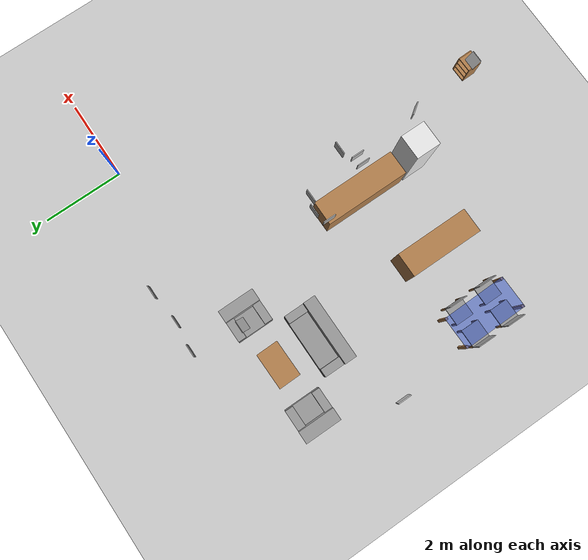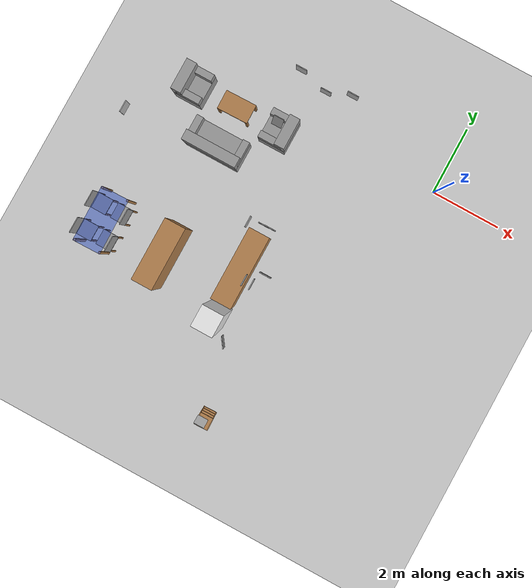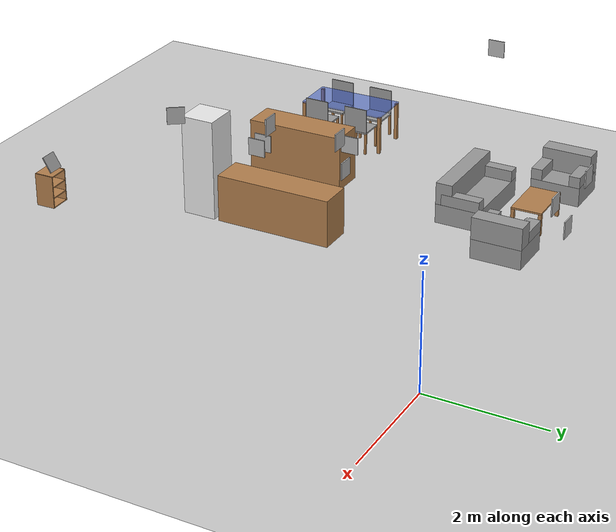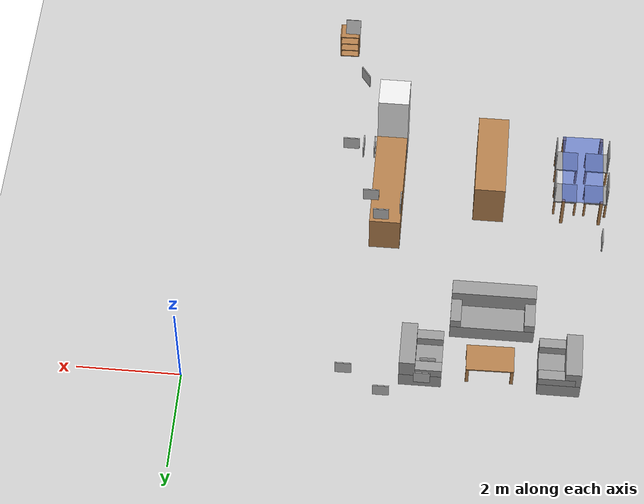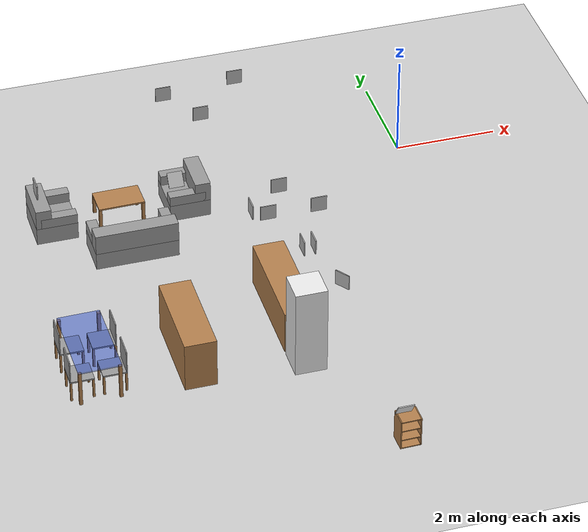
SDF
<sdf version="1.6">
 <world name="GrannyAnnie">
  <model name="ground_plane">
   <static>1</static>
   <link name="link">
    <collision name="collision">
     <geometry><plane><normal>0 0 1</normal><size>100 100</size></plane></geometry>
     <surface><friction><ode><mu>100</mu><mu2>50</mu2></ode></friction></surface>
    </collision>
    <visual name="visual">
     <cast_shadows>0</cast_shadows>
     <geometry><plane><normal>0 0 1</normal><size>100 100</size></plane></geometry>
     <material>
      <script><uri>file://media/materials/scripts/gazebo.material</uri><name>Gazebo/Grey</name></script>
     </material>
    </visual>
    <velocity_decay><linear>0</linear><angular>0</angular></velocity_decay>
   </link>
  </model>
  <model name="tag_0">
   <pose>-3.817 0.7 1.12 -1.57079 -1.57079 3.14159</pose>
   <static>1</static>
   <link name="link">
    <collision name="collision"><geometry><box><size>0.3 0.3 0.02</size></box></geometry></collision>
    <visual name="visual">
     <geometry><box><size>0.3 0.3 0.02</size></box></geometry>
     <material>
      <script><uri>file://tags_material/scripts/tags.material</uri><name>Tag36_11_00000</name></script>
     </material>
    </visual>
   </link>
   <static>0</static>
  </model>
  <model name="tag_1">
   <pose>-2.583 -8.289 0.74 0 -1.03 -1.5708</pose>
   <static>1</static>
   <link name="link">
    <collision name="collision"><geometry><box><size>0.3 0.3 0.02</size></box></geometry></collision>
    <visual name="visual">
     <geometry><box><size>0.3 0.3 0.02</size></box></geometry>
     <material>
      <script><uri>file://tags_material/scripts/tags.material</uri><name>Tag36_11_00001</name></script>
     </material>
    </visual>
   </link>
   <static>0</static>
  </model>
  <model name="tag_2">
   <pose>-3.304 -4.474 1.65 3.14159 -1.57079 3.14159</pose>
   <static>1</static>
   <link name="link">
    <collision name="collision"><geometry><box><size>0.3 0.3 0.02</size></box></geometry></collision>
    <visual name="visual">
     <geometry><box><size>0.3 0.3 0.02</size></box></geometry>
     <material>
      <script><uri>file://tags_material/scripts/tags.material</uri><name>Tag36_11_00002</name></script>
     </material>
    </visual>
   </link>
   <static>0</static>
  </model>
  <model name="tag_4">
   <pose>-4.549 0.727 1.7 -1.57079 -1.57079 3.14159</pose>
   <static>1</static>
   <link name="link">
    <collision name="collision"><geometry><box><size>0.3 0.3 0.02</size></box></geometry></collision>
    <visual name="visual">
     <geometry><box><size>0.3 0.3 0.02</size></box></geometry>
     <material>
      <script><uri>file://tags_material/scripts/tags.material</uri><name>Tag36_11_00004</name></script>
     </material>
    </visual>
   </link>
   <static>0</static>
  </model>
  <model name="tag_6">
   <pose>-3.535 -3.0625 1.4 1.57079 -1.57079 3.14159</pose>
   <static>1</static>
   <link name="link">
    <collision name="collision"><geometry><box><size>0.3 0.3 0.02</size></box></geometry></collision>
    <visual name="visual">
     <geometry><box><size>0.3 0.3 0.02</size></box></geometry>
     <material>
      <script><uri>file://tags_material/scripts/tags.material</uri><name>Tag36_11_00006</name></script>
     </material>
    </visual>
   </link>
   <static>0</static>
  </model>
  <model name="tag_11">
   <pose>-3.338 -3.071 1.99 1.57079 -1.57079 3.14159</pose>
   <static>1</static>
   <link name="link">
    <collision name="collision"><geometry><box><size>0.3 0.3 0.02</size></box></geometry></collision>
    <visual name="visual">
     <geometry><box><size>0.3 0.3 0.02</size></box></geometry>
     <material>
      <script><uri>file://tags_material/scripts/tags.material</uri><name>Tag36_11_00011</name></script>
     </material>
    </visual>
   </link>
   <static>0</static>
  </model>
  <model name="tag_12">
   <pose>-3.128 0.72 1.83 -1.57079 -1.57079 3.14159</pose>
   <static>1</static>
   <link name="link">
    <collision name="collision"><geometry><box><size>0.3 0.3 0.02</size></box></geometry></collision>
    <visual name="visual">
     <geometry><box><size>0.3 0.3 0.02</size></box></geometry>
     <material>
      <script><uri>file://tags_material/scripts/tags.material</uri><name>Tag36_11_00012</name></script>
     </material>
    </visual>
   </link>
   <static>0</static>
  </model>
  <model name="tag_14">
   <pose>-2.884 -4.091 2.215 1.57079 -1.57079 3.14159</pose>
   <static>1</static>
   <link name="link">
    <collision name="collision"><geometry><box><size>0.3 0.02 0.3</size></box></geometry></collision>
    <visual name="visual">
     <geometry><box><size>0.3 0.3 0.02</size></box></geometry>
     <material>
      <script><uri>file://tags_material/scripts/tags.material</uri><name>Tag36_11_00014</name></script>
     </material>
    </visual>
   </link>
   <static>0</static>
  </model>
  <model name="tag_15">
   <pose>-7.694 -2.223 2.208 7e-06 -1.57079 -3.14159</pose>
   <static>1</static>
   <link name="link">
    <collision name="collision"><geometry><box><size>0.02 0.3 0.3</size></box></geometry></collision>
    <visual name="visual">
     <geometry><box><size>0.3 0.3 0.02</size></box></geometry>
     <material>
      <script><uri>file://tags_material/scripts/tags.material</uri><name>Tag36_11_00015</name></script>
     </material>
    </visual>
   </link>
   <static>0</static>
  </model>
  <model name="tag_16">
   <pose>-3.094 -4.474 1.65 7e-06 -1.57079 -3.14159</pose>
   <static>1</static>
   <link name="link">
    <collision name="collision"><geometry><box><size>0.3 0.3 0.02</size></box></geometry></collision>
    <visual name="visual">
     <geometry><box><size>0.3 0.3 0.02</size></box></geometry>
     <material>
      <script><uri>file://tags_material/scripts/tags.material</uri><name>Tag36_11_00016</name></script>
     </material>
    </visual>
   </link>
   <static>0</static>
  </model>
  <model name="tag_17">
   <pose>-3.902 -3.178 1.65 3.14159 -1.57079 3.14159</pose>
   <static>1</static>
   <link name="link">
    <collision name="collision"><geometry><box><size>0.3 0.3 0.02</size></box></geometry></collision>
    <visual name="visual">
     <geometry><box><size>0.3 0.3 0.02</size></box></geometry>
     <material>
      <script><uri>file://tags_material/scripts/tags.material</uri><name>Tag36_11_00017</name></script>
     </material>
    </visual>
   </link>
   <static>0</static>
  </model>
  <model name="tag_19">
   <pose>-3.01927 -5.98086 1.935 -2.51948 -1.57079 -3.13788</pose>
   <static>1</static>
   <link name="link">
    <collision name="collision"><geometry><box><size>0.3 0.3 0.02</size></box></geometry></collision>
    <visual name="visual">
     <geometry><box><size>0.3 0.3 0.02</size></box></geometry>
     <material>
      <script><uri>file://tags_material/scripts/tags.material</uri><name>Tag36_11_00019</name></script>
     </material>
    </visual>
   </link>
   <static>0</static>
  </model>
  <model name="tag_28">
   <pose>-4.62832 -0.431263 0.491895 0.888007 0.004104 0</pose>
   <static>1</static>
   <link name="link">
    <collision name="collision"><geometry><box><size>0.3 0.3 0.02</size></box></geometry></collision>
    <visual name="visual">
     <geometry><box><size>0.3 0.3 0.02</size></box></geometry>
     <material>
      <script><uri>file://tags_material/scripts/tags.material</uri><name>Tag36_11_00028</name></script>
     </material>
    </visual>
   </link>
   <static>0</static>
  </model>
  <model name="mesa_comedor">
   <link name="mesa_link">
    <inertial>
     <pose>0 0 0.513571 0 -0 0</pose>
     <mass>7</mass>
     <inertia>
      <ixx>1.28229</ixx>
      <ixy>0</ixy>
      <ixz>5.70179e-17</ixz>
      <iyy>3.10629</iyy>
      <iyz>0</iyz>
      <izz>3.4192</izz>
     </inertia>
    </inertial>
    <collision name="mesa_link_collision">
     <pose>0 0 0.725 0 -0 0</pose>
     <geometry><box><size>1.6 0.8 0.03</size></box></geometry>
     <surface><friction><ode><mu>1</mu><mu2>1</mu2></ode></friction></surface>
    </collision>
    <collision name="mesa_link_collision_pata_1_link">
     <pose>0.77 0.37 0.355 0 -0 0</pose>
     <geometry><box><size>0.06 0.06 0.71</size></box></geometry>
     <surface><friction><ode><mu>1</mu><mu2>1</mu2></ode></friction></surface>
     <surface><friction><ode><mu>1</mu><mu2>1</mu2></ode></friction></surface>
    </collision>
    <collision name="mesa_link_collision_pata_2_link">
     <pose>0.77 -0.37 0.355 0 -0 0</pose>
     <geometry><box><size>0.06 0.06 0.71</size></box></geometry>
     <surface><friction><ode><mu>1</mu><mu2>1</mu2></ode></friction></surface>
     <surface><friction><ode><mu>1</mu><mu2>1</mu2></ode></friction></surface>
    </collision>
    <collision name="mesa_link_collision_pata_3_link">
     <pose>-0.77 -0.37 0.355 0 -0 0</pose>
     <geometry><box><size>0.06 0.06 0.71</size></box></geometry>
     <surface><friction><ode><mu>1</mu><mu2>1</mu2></ode></friction></surface>
     <surface><friction><ode><mu>1</mu><mu2>1</mu2></ode></friction></surface>
    </collision>
    <collision name="mesa_link_collision_pata_4_link">
     <pose>-0.77 0.37 0.355 0 -0 0</pose>
     <geometry><box><size>0.06 0.06 0.71</size></box></geometry>
     <surface><friction><ode><mu>1</mu><mu2>1</mu2></ode></friction></surface>
     <surface><friction><ode><mu>1</mu><mu2>1</mu2></ode></friction></surface>
    </collision>
    <visual name="mesa_link_visual">
     <pose>0 0 0.725 0 -0 0</pose>
     <geometry><box><size>1.6 0.8 0.03</size></box></geometry>
     <material><script><name>Gazebo/BlueTransparent</name><uri>__default__</uri></script></material>
    </visual>
    <visual name="mesa_link_visual_pata_1_link">
     <pose>0.77 0.37 0.355 0 -0 0</pose>
     <geometry><box><size>0.06 0.06 0.71</size></box></geometry>
     <material><script><name>Gazebo/Wood</name><uri>__default__</uri></script></material>
    </visual>
    <visual name="mesa_link_visual_pata_2_link">
     <pose>0.77 -0.37 0.355 0 -0 0</pose>
     <geometry><box><size>0.06 0.06 0.71</size></box></geometry>
     <material><script><name>Gazebo/Wood</name><uri>__default__</uri></script></material>
    </visual>
    <visual name="mesa_link_visual_pata_3_link">
     <pose>-0.77 -0.37 0.355 0 -0 0</pose>
     <geometry><box><size>0.06 0.06 0.71</size></box></geometry>
     <material><script><name>Gazebo/Wood</name><uri>__default__</uri></script></material>
    </visual>
    <visual name="mesa_link_visual_pata_4_link">
     <pose>-0.77 0.37 0.355 0 -0 0</pose>
     <geometry><box><size>0.06 0.06 0.71</size></box></geometry>
     <material><script><name>Gazebo/Wood</name><uri>__default__</uri></script></material>
    </visual>
    <velocity_decay><linear>0</linear><angular>0</angular></velocity_decay>
    <velocity_decay><linear>0</linear><angular>0</angular></velocity_decay>
    <velocity_decay><linear>0</linear><angular>0</angular></velocity_decay>
    <velocity_decay><linear>0</linear><angular>0</angular></velocity_decay>
    <velocity_decay><linear>0</linear><angular>0</angular></velocity_decay>
    <self_collide>1</self_collide>
   </link>
   <pose>-7.41088 -4.97194 -0.00088 0 -0 1.58516</pose>
   <static>0</static>
  </model>
  <model name="silla_1">
   <link name="silla_link">
    <inertial>
     <pose>0.0215 0 0.353 0 -0 0</pose>
     <mass>2</mass>
     <inertia>
      <ixx>0.674432</ixx>
      <ixy>0</ixy>
      <ixz>-0.012986</ixz>
      <iyy>0.682753</iyy>
      <iyz>0</iyz>
      <izz>0.675561</izz>
     </inertia>
    </inertial>
    <collision name="silla_link_collision">
     <pose>0 0 0.415 0 -0 0</pose>
     <geometry><box><size>0.45 0.45 0.03</size></box></geometry>
     <surface><friction><ode><mu>1</mu><mu2>1</mu2></ode></friction></surface>
    </collision>
    <collision name="silla_link_collision_pata_1_link">
     <pose>0.205 0.205 0.2 0 -0 0</pose>
     <geometry><box><size>0.04 0.04 0.4</size></box></geometry>
     <surface><friction><ode><mu>1</mu><mu2>1</mu2></ode></friction></surface>
     <surface><friction><ode><mu>1</mu><mu2>1</mu2></ode></friction></surface>
    </collision>
    <collision name="silla_link_collision_pata_2_link">
     <pose>0.205 -0.205 0.2 0 -0 0</pose>
     <geometry><box><size>0.04 0.04 0.4</size></box></geometry>
     <surface><friction><ode><mu>1</mu><mu2>1</mu2></ode></friction></surface>
     <surface><friction><ode><mu>1</mu><mu2>1</mu2></ode></friction></surface>
    </collision>
    <collision name="silla_link_collision_pata_3_link">
     <pose>-0.205 -0.205 0.2 0 -0 0</pose>
     <geometry><box><size>0.04 0.04 0.4</size></box></geometry>
     <surface><friction><ode><mu>1</mu><mu2>1</mu2></ode></friction></surface>
     <surface><friction><ode><mu>1</mu><mu2>1</mu2></ode></friction></surface>
    </collision>
    <collision name="silla_link_collision_pata_4_link">
     <pose>-0.205 0.205 0.2 0 -0 0</pose>
     <geometry><box><size>0.04 0.04 0.4</size></box></geometry>
     <surface><friction><ode><mu>1</mu><mu2>1</mu2></ode></friction></surface>
     <surface><friction><ode><mu>1</mu><mu2>1</mu2></ode></friction></surface>
    </collision>
    <collision name="silla_link_collision_respaldo_link">
     <pose>0.215 0 0.655 0 -0 0</pose>
     <geometry><box><size>0.02 0.45 0.45</size></box></geometry>
     <surface><friction><ode><mu>1</mu><mu2>1</mu2></ode></friction></surface>
     <surface><friction><ode><mu>1</mu><mu2>1</mu2></ode></friction></surface>
    </collision>
    <visual name="silla_link_visual">
     <pose>0 0 0.415 0 -0 0</pose>
     <geometry><box><size>0.45 0.45 0.03</size></box></geometry>
     <material><script><name>Gazebo/Grey</name><uri>__default__</uri></script></material>
    </visual>
    <visual name="silla_link_visual_pata_1_link">
     <pose>0.205 0.205 0.2 0 -0 0</pose>
     <geometry><box><size>0.04 0.04 0.4</size></box></geometry>
     <material><script><name>Gazebo/Wood</name><uri>__default__</uri></script></material>
    </visual>
    <visual name="silla_link_visual_pata_2_link">
     <pose>0.205 -0.205 0.2 0 -0 0</pose>
     <geometry><box><size>0.04 0.04 0.4</size></box></geometry>
     <material><script><name>Gazebo/Wood</name><uri>__default__</uri></script></material>
    </visual>
    <visual name="silla_link_visual_pata_3_link">
     <pose>-0.205 -0.205 0.2 0 -0 0</pose>
     <geometry><box><size>0.04 0.04 0.4</size></box></geometry>
     <material><script><name>Gazebo/Wood</name><uri>__default__</uri></script></material>
    </visual>
    <visual name="silla_link_visual_pata_4_link">
     <pose>-0.205 0.205 0.2 0 -0 0</pose>
     <geometry><box><size>0.04 0.04 0.4</size></box></geometry>
     <material><script><name>Gazebo/Wood</name><uri>__default__</uri></script></material>
    </visual>
    <visual name="silla_link_visual_respaldo_link">
     <pose>0.215 0 0.655 0 -0 0</pose>
     <geometry><box><size>0.02 0.45 0.45</size></box></geometry>
     <material><script><name>Gazebo/Grey</name><uri>__default__</uri></script></material>
    </visual>
    <velocity_decay><linear>0</linear><angular>0</angular></velocity_decay>
    <velocity_decay><linear>0</linear><angular>0</angular></velocity_decay>
    <velocity_decay><linear>0</linear><angular>0</angular></velocity_decay>
    <velocity_decay><linear>0</linear><angular>0</angular></velocity_decay>
    <velocity_decay><linear>0</linear><angular>0</angular></velocity_decay>
    <velocity_decay><linear>0</linear><angular>0</angular></velocity_decay>
    <self_collide>1</self_collide>
   </link>
   <pose>-7.09877 -5.39741 5.5e-05 0 0.000244 -0.004875</pose>
   <static>0</static>
  </model>
  <model name="silla_2">
   <link name="silla_link">
    <inertial>
     <pose>0.0215 0 0.353 0 -0 0</pose>
     <mass>2</mass>
     <inertia>
      <ixx>0.674432</ixx>
      <ixy>0</ixy>
      <ixz>-0.012986</ixz>
      <iyy>0.682753</iyy>
      <iyz>0</iyz>
      <izz>0.675561</izz>
     </inertia>
    </inertial>
    <collision name="silla_link_collision">
     <pose>0 0 0.415 0 -0 0</pose>
     <geometry><box><size>0.45 0.45 0.03</size></box></geometry>
     <surface><friction><ode><mu>1</mu><mu2>1</mu2></ode></friction></surface>
    </collision>
    <collision name="silla_link_collision_pata_1_link">
     <pose>0.205 0.205 0.2 0 -0 0</pose>
     <geometry><box><size>0.04 0.04 0.4</size></box></geometry>
     <surface><friction><ode><mu>1</mu><mu2>1</mu2></ode></friction></surface>
     <surface><friction><ode><mu>1</mu><mu2>1</mu2></ode></friction></surface>
    </collision>
    <collision name="silla_link_collision_pata_2_link">
     <pose>0.205 -0.205 0.2 0 -0 0</pose>
     <geometry><box><size>0.04 0.04 0.4</size></box></geometry>
     <surface><friction><ode><mu>1</mu><mu2>1</mu2></ode></friction></surface>
     <surface><friction><ode><mu>1</mu><mu2>1</mu2></ode></friction></surface>
    </collision>
    <collision name="silla_link_collision_pata_3_link">
     <pose>-0.205 -0.205 0.2 0 -0 0</pose>
     <geometry><box><size>0.04 0.04 0.4</size></box></geometry>
     <surface><friction><ode><mu>1</mu><mu2>1</mu2></ode></friction></surface>
     <surface><friction><ode><mu>1</mu><mu2>1</mu2></ode></friction></surface>
    </collision>
    <collision name="silla_link_collision_pata_4_link">
     <pose>-0.205 0.205 0.2 0 -0 0</pose>
     <geometry><box><size>0.04 0.04 0.4</size></box></geometry>
     <surface><friction><ode><mu>1</mu><mu2>1</mu2></ode></friction></surface>
     <surface><friction><ode><mu>1</mu><mu2>1</mu2></ode></friction></surface>
    </collision>
    <collision name="silla_link_collision_respaldo_link">
     <pose>0.215 0 0.655 0 -0 0</pose>
     <geometry><box><size>0.02 0.45 0.45</size></box></geometry>
     <surface><friction><ode><mu>1</mu><mu2>1</mu2></ode></friction></surface>
     <surface><friction><ode><mu>1</mu><mu2>1</mu2></ode></friction></surface>
    </collision>
    <visual name="silla_link_visual">
     <pose>0 0 0.415 0 -0 0</pose>
     <geometry><box><size>0.45 0.45 0.03</size></box></geometry>
     <material><script><name>Gazebo/Grey</name><uri>__default__</uri></script></material>
    </visual>
    <visual name="silla_link_visual_pata_1_link">
     <pose>0.205 0.205 0.2 0 -0 0</pose>
     <geometry><box><size>0.04 0.04 0.4</size></box></geometry>
     <material><script><name>Gazebo/Wood</name><uri>__default__</uri></script></material>
    </visual>
    <visual name="silla_link_visual_pata_2_link">
     <pose>0.205 -0.205 0.2 0 -0 0</pose>
     <geometry><box><size>0.04 0.04 0.4</size></box></geometry>
     <material><script><name>Gazebo/Wood</name><uri>__default__</uri></script></material>
    </visual>
    <visual name="silla_link_visual_pata_3_link">
     <pose>-0.205 -0.205 0.2 0 -0 0</pose>
     <geometry><box><size>0.04 0.04 0.4</size></box></geometry>
     <material><script><name>Gazebo/Wood</name><uri>__default__</uri></script></material>
    </visual>
    <visual name="silla_link_visual_pata_4_link">
     <pose>-0.205 0.205 0.2 0 -0 0</pose>
     <geometry><box><size>0.04 0.04 0.4</size></box></geometry>
     <material><script><name>Gazebo/Wood</name><uri>__default__</uri></script></material>
    </visual>
    <visual name="silla_link_visual_respaldo_link">
     <pose>0.215 0 0.655 0 -0 0</pose>
     <geometry><box><size>0.02 0.45 0.45</size></box></geometry>
     <material><script><name>Gazebo/Grey</name><uri>__default__</uri></script></material>
    </visual>
    <velocity_decay><linear>0</linear><angular>0</angular></velocity_decay>
    <velocity_decay><linear>0</linear><angular>0</angular></velocity_decay>
    <velocity_decay><linear>0</linear><angular>0</angular></velocity_decay>
    <velocity_decay><linear>0</linear><angular>0</angular></velocity_decay>
    <velocity_decay><linear>0</linear><angular>0</angular></velocity_decay>
    <velocity_decay><linear>0</linear><angular>0</angular></velocity_decay>
    <self_collide>1</self_collide>
   </link>
   <pose>-7.09877 -4.59741 5.5e-05 0 0.000244 -0.004875</pose>
   <static>0</static>
  </model>
  <model name="silla_3">
   <link name="silla_link">
    <inertial>
     <pose>0.0215 0 0.353 0 -0 0</pose>
     <mass>2</mass>
     <inertia>
      <ixx>0.674432</ixx>
      <ixy>0</ixy>
      <ixz>-0.012986</ixz>
      <iyy>0.682753</iyy>
      <iyz>0</iyz>
      <izz>0.675561</izz>
     </inertia>
    </inertial>
    <collision name="silla_link_collision">
     <pose>0 0 0.415 0 -0 0</pose>
     <geometry><box><size>0.45 0.45 0.03</size></box></geometry>
     <surface><friction><ode><mu>1</mu><mu2>1</mu2></ode></friction></surface>
    </collision>
    <collision name="silla_link_collision_pata_1_link">
     <pose>0.205 0.205 0.2 0 -0 0</pose>
     <geometry><box><size>0.04 0.04 0.4</size></box></geometry>
     <surface><friction><ode><mu>1</mu><mu2>1</mu2></ode></friction></surface>
     <surface><friction><ode><mu>1</mu><mu2>1</mu2></ode></friction></surface>
    </collision>
    <collision name="silla_link_collision_pata_2_link">
     <pose>0.205 -0.205 0.2 0 -0 0</pose>
     <geometry><box><size>0.04 0.04 0.4</size></box></geometry>
     <surface><friction><ode><mu>1</mu><mu2>1</mu2></ode></friction></surface>
     <surface><friction><ode><mu>1</mu><mu2>1</mu2></ode></friction></surface>
    </collision>
    <collision name="silla_link_collision_pata_3_link">
     <pose>-0.205 -0.205 0.2 0 -0 0</pose>
     <geometry><box><size>0.04 0.04 0.4</size></box></geometry>
     <surface><friction><ode><mu>1</mu><mu2>1</mu2></ode></friction></surface>
     <surface><friction><ode><mu>1</mu><mu2>1</mu2></ode></friction></surface>
    </collision>
    <collision name="silla_link_collision_pata_4_link">
     <pose>-0.205 0.205 0.2 0 -0 0</pose>
     <geometry><box><size>0.04 0.04 0.4</size></box></geometry>
     <surface><friction><ode><mu>1</mu><mu2>1</mu2></ode></friction></surface>
     <surface><friction><ode><mu>1</mu><mu2>1</mu2></ode></friction></surface>
    </collision>
    <collision name="silla_link_collision_respaldo_link">
     <pose>0.215 0 0.655 0 -0 0</pose>
     <geometry><box><size>0.02 0.45 0.45</size></box></geometry>
     <surface><friction><ode><mu>1</mu><mu2>1</mu2></ode></friction></surface>
     <surface><friction><ode><mu>1</mu><mu2>1</mu2></ode></friction></surface>
    </collision>
    <visual name="silla_link_visual">
     <pose>0 0 0.415 0 -0 0</pose>
     <geometry><box><size>0.45 0.45 0.03</size></box></geometry>
     <material><script><name>Gazebo/Grey</name><uri>__default__</uri></script></material>
    </visual>
    <visual name="silla_link_visual_pata_1_link">
     <pose>0.205 0.205 0.2 0 -0 0</pose>
     <geometry><box><size>0.04 0.04 0.4</size></box></geometry>
     <material><script><name>Gazebo/Wood</name><uri>__default__</uri></script></material>
    </visual>
    <visual name="silla_link_visual_pata_2_link">
     <pose>0.205 -0.205 0.2 0 -0 0</pose>
     <geometry><box><size>0.04 0.04 0.4</size></box></geometry>
     <material><script><name>Gazebo/Wood</name><uri>__default__</uri></script></material>
    </visual>
    <visual name="silla_link_visual_pata_3_link">
     <pose>-0.205 -0.205 0.2 0 -0 0</pose>
     <geometry><box><size>0.04 0.04 0.4</size></box></geometry>
     <material><script><name>Gazebo/Wood</name><uri>__default__</uri></script></material>
    </visual>
    <visual name="silla_link_visual_pata_4_link">
     <pose>-0.205 0.205 0.2 0 -0 0</pose>
     <geometry><box><size>0.04 0.04 0.4</size></box></geometry>
     <material><script><name>Gazebo/Wood</name><uri>__default__</uri></script></material>
    </visual>
    <visual name="silla_link_visual_respaldo_link">
     <pose>0.215 0 0.655 0 -0 0</pose>
     <geometry><box><size>0.02 0.45 0.45</size></box></geometry>
     <material><script><name>Gazebo/Grey</name><uri>__default__</uri></script></material>
    </visual>
    <velocity_decay><linear>0</linear><angular>0</angular></velocity_decay>
    <velocity_decay><linear>0</linear><angular>0</angular></velocity_decay>
    <velocity_decay><linear>0</linear><angular>0</angular></velocity_decay>
    <velocity_decay><linear>0</linear><angular>0</angular></velocity_decay>
    <velocity_decay><linear>0</linear><angular>0</angular></velocity_decay>
    <velocity_decay><linear>0</linear><angular>0</angular></velocity_decay>
    <self_collide>1</self_collide>
   </link>
   <pose>-7.70125 -5.40263 5.5e-05 0 0.000244 3.13514</pose>
   <static>0</static>
  </model>
  <model name="silla_4">
   <link name="silla_link">
    <inertial>
     <pose>0.0215 0 0.353 0 -0 0</pose>
     <mass>2</mass>
     <inertia>
      <ixx>0.674432</ixx>
      <ixy>0</ixy>
      <ixz>-0.012986</ixz>
      <iyy>0.682753</iyy>
      <iyz>0</iyz>
      <izz>0.675561</izz>
     </inertia>
    </inertial>
    <collision name="silla_link_collision">
     <pose>0 0 0.415 0 -0 0</pose>
     <geometry><box><size>0.45 0.45 0.03</size></box></geometry>
     <surface><friction><ode><mu>1</mu><mu2>1</mu2></ode></friction></surface>
    </collision>
    <collision name="silla_link_collision_pata_1_link">
     <pose>0.205 0.205 0.2 0 -0 0</pose>
     <geometry><box><size>0.04 0.04 0.4</size></box></geometry>
     <surface><friction><ode><mu>1</mu><mu2>1</mu2></ode></friction></surface>
     <surface><friction><ode><mu>1</mu><mu2>1</mu2></ode></friction></surface>
    </collision>
    <collision name="silla_link_collision_pata_2_link">
     <pose>0.205 -0.205 0.2 0 -0 0</pose>
     <geometry><box><size>0.04 0.04 0.4</size></box></geometry>
     <surface><friction><ode><mu>1</mu><mu2>1</mu2></ode></friction></surface>
     <surface><friction><ode><mu>1</mu><mu2>1</mu2></ode></friction></surface>
    </collision>
    <collision name="silla_link_collision_pata_3_link">
     <pose>-0.205 -0.205 0.2 0 -0 0</pose>
     <geometry><box><size>0.04 0.04 0.4</size></box></geometry>
     <surface><friction><ode><mu>1</mu><mu2>1</mu2></ode></friction></surface>
     <surface><friction><ode><mu>1</mu><mu2>1</mu2></ode></friction></surface>
    </collision>
    <collision name="silla_link_collision_pata_4_link">
     <pose>-0.205 0.205 0.2 0 -0 0</pose>
     <geometry><box><size>0.04 0.04 0.4</size></box></geometry>
     <surface><friction><ode><mu>1</mu><mu2>1</mu2></ode></friction></surface>
     <surface><friction><ode><mu>1</mu><mu2>1</mu2></ode></friction></surface>
    </collision>
    <collision name="silla_link_collision_respaldo_link">
     <pose>0.215 0 0.655 0 -0 0</pose>
     <geometry><box><size>0.02 0.45 0.45</size></box></geometry>
     <surface><friction><ode><mu>1</mu><mu2>1</mu2></ode></friction></surface>
     <surface><friction><ode><mu>1</mu><mu2>1</mu2></ode></friction></surface>
    </collision>
    <visual name="silla_link_visual">
     <pose>0 0 0.415 0 -0 0</pose>
     <geometry><box><size>0.45 0.45 0.03</size></box></geometry>
     <material><script><name>Gazebo/Grey</name><uri>__default__</uri></script></material>
    </visual>
    <visual name="silla_link_visual_pata_1_link">
     <pose>0.205 0.205 0.2 0 -0 0</pose>
     <geometry><box><size>0.04 0.04 0.4</size></box></geometry>
     <material><script><name>Gazebo/Wood</name><uri>__default__</uri></script></material>
    </visual>
    <visual name="silla_link_visual_pata_2_link">
     <pose>0.205 -0.205 0.2 0 -0 0</pose>
     <geometry><box><size>0.04 0.04 0.4</size></box></geometry>
     <material><script><name>Gazebo/Wood</name><uri>__default__</uri></script></material>
    </visual>
    <visual name="silla_link_visual_pata_3_link">
     <pose>-0.205 -0.205 0.2 0 -0 0</pose>
     <geometry><box><size>0.04 0.04 0.4</size></box></geometry>
     <material><script><name>Gazebo/Wood</name><uri>__default__</uri></script></material>
    </visual>
    <visual name="silla_link_visual_pata_4_link">
     <pose>-0.205 0.205 0.2 0 -0 0</pose>
     <geometry><box><size>0.04 0.04 0.4</size></box></geometry>
     <material><script><name>Gazebo/Wood</name><uri>__default__</uri></script></material>
    </visual>
    <visual name="silla_link_visual_respaldo_link">
     <pose>0.215 0 0.655 0 -0 0</pose>
     <geometry><box><size>0.02 0.45 0.45</size></box></geometry>
     <material><script><name>Gazebo/Grey</name><uri>__default__</uri></script></material>
    </visual>
    <velocity_decay><linear>0</linear><angular>0</angular></velocity_decay>
    <velocity_decay><linear>0</linear><angular>0</angular></velocity_decay>
    <velocity_decay><linear>0</linear><angular>0</angular></velocity_decay>
    <velocity_decay><linear>0</linear><angular>0</angular></velocity_decay>
    <velocity_decay><linear>0</linear><angular>0</angular></velocity_decay>
    <velocity_decay><linear>0</linear><angular>0</angular></velocity_decay>
    <self_collide>1</self_collide>
   </link>
   <pose>-7.70125 -4.60263 5.5e-05 0 0.000244 3.13514</pose>
   <static>0</static>
  </model>
  <model name="mesa_salon">
   <link name="mesa_link">
    <inertial>
     <pose>0 0 0.3075 0 -0 0</pose>
     <mass>4</mass>
     <inertia>
      <ixx>0.666275</ixx>
      <ixy>1.92593e-34</ixy>
      <ixz>1.70697e-17</ixz>
      <iyy>0.899025</iyy>
      <iyz>4.26742e-18</iyz>
      <izz>0.97285</izz>
     </inertia>
    </inertial>
    <collision name="mesa_link_collision">
     <pose>0 0 0.415 0 -0 0</pose>
     <geometry><box><size>0.9 0.55 0.03</size></box></geometry>
     <surface><friction><ode><mu>1</mu><mu2>1</mu2></ode></friction></surface>
    </collision>
    <collision name="mesa_link_collision_pata_1_link">
     <pose>0.42 0.245 0.2 0 -0 0</pose>
     <geometry><box><size>0.06 0.06 0.4</size></box></geometry>
     <surface><friction><ode><mu>1</mu><mu2>1</mu2></ode></friction></surface>
     <surface><friction><ode><mu>1</mu><mu2>1</mu2></ode></friction></surface>
    </collision>
    <collision name="mesa_link_collision_pata_2_link">
     <pose>0.42 -0.245 0.2 0 -0 0</pose>
     <geometry><box><size>0.06 0.06 0.4</size></box></geometry>
     <surface><friction><ode><mu>1</mu><mu2>1</mu2></ode></friction></surface>
     <surface><friction><ode><mu>1</mu><mu2>1</mu2></ode></friction></surface>
    </collision>
    <collision name="mesa_link_collision_pata_3_link">
     <pose>-0.42 -0.245 0.2 0 -0 0</pose>
     <geometry><box><size>0.06 0.06 0.4</size></box></geometry>
     <surface><friction><ode><mu>1</mu><mu2>1</mu2></ode></friction></surface>
     <surface><friction><ode><mu>1</mu><mu2>1</mu2></ode></friction></surface>
    </collision>
    <collision name="mesa_link_collision_pata_4_link">
     <pose>-0.42 0.245 0.2 0 -0 0</pose>
     <geometry><box><size>0.06 0.06 0.4</size></box></geometry>
     <surface><friction><ode><mu>1</mu><mu2>1</mu2></ode></friction></surface>
     <surface><friction><ode><mu>1</mu><mu2>1</mu2></ode></friction></surface>
    </collision>
    <visual name="mesa_link_visual">
     <pose>0 0 0.415 0 -0 0</pose>
     <geometry><box><size>0.9 0.55 0.03</size></box></geometry>
     <material><script><name>Gazebo/Wood</name><uri>__default__</uri></script></material>
    </visual>
    <visual name="mesa_link_visual_pata_1_link">
     <pose>0.42 0.245 0.2 0 -0 0</pose>
     <geometry><box><size>0.06 0.06 0.4</size></box></geometry>
     <material><script><name>Gazebo/Wood</name><uri>__default__</uri></script></material>
    </visual>
    <visual name="mesa_link_visual_pata_2_link">
     <pose>0.42 -0.245 0.2 0 -0 0</pose>
     <geometry><box><size>0.06 0.06 0.4</size></box></geometry>
     <material><script><name>Gazebo/Wood</name><uri>__default__</uri></script></material>
    </visual>
    <visual name="mesa_link_visual_pata_3_link">
     <pose>-0.42 -0.245 0.2 0 -0 0</pose>
     <geometry><box><size>0.06 0.06 0.4</size></box></geometry>
     <material><script><name>Gazebo/Wood</name><uri>__default__</uri></script></material>
    </visual>
    <visual name="mesa_link_visual_pata_4_link">
     <pose>-0.42 0.245 0.2 0 -0 0</pose>
     <geometry><box><size>0.06 0.06 0.4</size></box></geometry>
     <material><script><name>Gazebo/Wood</name><uri>__default__</uri></script></material>
    </visual>
    <velocity_decay><linear>0</linear><angular>0</angular></velocity_decay>
    <velocity_decay><linear>0</linear><angular>0</angular></velocity_decay>
    <velocity_decay><linear>0</linear><angular>0</angular></velocity_decay>
    <velocity_decay><linear>0</linear><angular>0</angular></velocity_decay>
    <velocity_decay><linear>0</linear><angular>0</angular></velocity_decay>
    <self_collide>1</self_collide>
   </link>
   <pose>-5.797 -0.594 0 0 -0 0.014708</pose>
   <static>0</static>
  </model>
  <model name="sofa_x2_salon">
   <link name="sofa_link">
    <inertial>
     <pose>0 0.011539 0.257692 0 -0 0</pose>
     <mass>13</mass>
     <inertia>
      <ixx>0.7625</ixx>
      <ixy>0</ixy>
      <ixz>0</ixz>
      <iyy>1.67673</iyy>
      <iyz>-0.0463462</iyz>
      <izz>1.44577</izz>
     </inertia>
    </inertial>
    <collision name="sofa_link_collision">
     <pose>0 0 0.175 0 -0 0</pose>
     <geometry><box><size>1.6 0.8 0.35</size></box></geometry>
     <surface><friction><ode><mu>1</mu><mu2>1</mu2></ode></friction></surface>
    </collision>
    <collision name="sofa_link_collision_brazo_1_link">
     <pose>0.7 -0.05 0.45 0 -0 0</pose>
     <geometry><box><size>0.2 0.7 0.2</size></box></geometry>
     <surface><friction><ode><mu>1</mu><mu2>1</mu2></ode></friction></surface>
     <surface><friction><ode><mu>1</mu><mu2>1</mu2></ode></friction></surface>
    </collision>
    <collision name="sofa_link_collision_brazo_2_link">
     <pose>-0.7 -0.05 0.45 0 -0 0</pose>
     <geometry><box><size>0.2 0.7 0.2</size></box></geometry>
     <surface><friction><ode><mu>1</mu><mu2>1</mu2></ode></friction></surface>
     <surface><friction><ode><mu>1</mu><mu2>1</mu2></ode></friction></surface>
    </collision>
    <collision name="sofa_link_collision_respaldo_link">
     <pose>0 0.25 0.55 0 -0 0</pose>
     <geometry><box><size>1.6 0.3 0.4</size></box></geometry>
     <surface><friction><ode><mu>1</mu><mu2>1</mu2></ode></friction></surface>
     <surface><friction><ode><mu>1</mu><mu2>1</mu2></ode></friction></surface>
    </collision>
    <visual name="sofa_link_visual">
     <pose>0 0 0.175 0 -0 0</pose>
     <geometry><box><size>1.6 0.8 0.35</size></box></geometry>
     <material><script><name>Gazebo/Grey</name><uri>__default__</uri></script></material>
    </visual>
    <visual name="sofa_link_visual_brazo_1_link">
     <pose>0.7 -0.05 0.45 0 -0 0</pose>
     <geometry><box><size>0.2 0.7 0.2</size></box></geometry>
     <material><script><name>Gazebo/Grey</name><uri>__default__</uri></script></material>
    </visual>
    <visual name="sofa_link_visual_brazo_2_link">
     <pose>-0.7 -0.05 0.45 0 -0 0</pose>
     <geometry><box><size>0.2 0.7 0.2</size></box></geometry>
     <material><script><name>Gazebo/Grey</name><uri>__default__</uri></script></material>
    </visual>
    <visual name="sofa_link_visual_respaldo_link">
     <pose>0 0.25 0.55 0 -0 0</pose>
     <geometry><box><size>1.6 0.3 0.4</size></box></geometry>
     <material><script><name>Gazebo/Grey</name><uri>__default__</uri></script></material>
    </visual>
    <velocity_decay><linear>0</linear><angular>0</angular></velocity_decay>
    <velocity_decay><linear>0</linear><angular>0</angular></velocity_decay>
    <velocity_decay><linear>0</linear><angular>0</angular></velocity_decay>
    <velocity_decay><linear>0</linear><angular>0</angular></velocity_decay>
    <self_collide>1</self_collide>
   </link>
   <pose>-5.7993 -1.69637 -0.000492 -0.001229 -0 3.14026</pose>
   <static>0</static>
  </model>
  <model name="sofa_x1_1_salon">
   <link name="sofa_link">
    <inertial>
     <pose>0 0.01875 0.309375 0 -0 0</pose>
     <mass>8</mass>
     <inertia>
      <ixx>0.705859</ixx>
      <ixy>0</ixy>
      <ixz>0</ixz>
      <iyy>0.886172</iyy>
      <iyz>-0.0385938</iyz>
      <izz>0.709687</izz>
     </inertia>
    </inertial>
    <collision name="sofa_link_collision">
     <pose>0 0 0.175 0 -0 0</pose>
     <geometry><box><size>0.9 0.8 0.35</size></box></geometry>
     <surface><friction><ode><mu>1</mu><mu2>1</mu2></ode></friction></surface>
    </collision>
    <collision name="sofa_link_collision_brazo_1_link">
     <pose>0.35 -0.05 0.45 0 -0 0</pose>
     <geometry><box><size>0.2 0.7 0.2</size></box></geometry>
     <surface><friction><ode><mu>1</mu><mu2>1</mu2></ode></friction></surface>
     <surface><friction><ode><mu>1</mu><mu2>1</mu2></ode></friction></surface>
    </collision>
    <collision name="sofa_link_collision_brazo_2_link">
     <pose>-0.35 -0.05 0.45 0 -0 0</pose>
     <geometry><box><size>0.2 0.7 0.2</size></box></geometry>
     <surface><friction><ode><mu>1</mu><mu2>1</mu2></ode></friction></surface>
     <surface><friction><ode><mu>1</mu><mu2>1</mu2></ode></friction></surface>
    </collision>
    <collision name="sofa_link_collision_respaldo_link">
     <pose>0 0.25 0.55 0 -0 0</pose>
     <geometry><box><size>0.9 0.3 0.4</size></box></geometry>
     <surface><friction><ode><mu>1</mu><mu2>1</mu2></ode></friction></surface>
     <surface><friction><ode><mu>1</mu><mu2>1</mu2></ode></friction></surface>
    </collision>
    <visual name="sofa_link_visual">
     <pose>0 0 0.175 0 -0 0</pose>
     <geometry><box><size>0.9 0.8 0.35</size></box></geometry>
     <material><script><name>Gazebo/Grey</name><uri>__default__</uri></script></material>
    </visual>
    <visual name="sofa_link_visual_brazo_1_link">
     <pose>0.35 -0.05 0.45 0 -0 0</pose>
     <geometry><box><size>0.2 0.7 0.2</size></box></geometry>
     <material><script><name>Gazebo/Grey</name><uri>__default__</uri></script></material>
    </visual>
    <visual name="sofa_link_visual_brazo_2_link">
     <pose>-0.35 -0.05 0.45 0 -0 0</pose>
     <geometry><box><size>0.2 0.7 0.2</size></box></geometry>
     <material><script><name>Gazebo/Grey</name><uri>__default__</uri></script></material>
    </visual>
    <visual name="sofa_link_visual_respaldo_link">
     <pose>0 0.25 0.55 0 -0 0</pose>
     <geometry><box><size>0.9 0.3 0.4</size></box></geometry>
     <material><script><name>Gazebo/Grey</name><uri>__default__</uri></script></material>
    </visual>
    <velocity_decay><linear>0</linear><angular>0</angular></velocity_decay>
    <velocity_decay><linear>0</linear><angular>0</angular></velocity_decay>
    <velocity_decay><linear>0</linear><angular>0</angular></velocity_decay>
    <velocity_decay><linear>0</linear><angular>0</angular></velocity_decay>
    <self_collide>1</self_collide>
   </link>
   <pose>-4.5 -0.6 0 0 0 -1.57</pose>
   <static>0</static>
  </model>
  <model name="sofa_x1_2_salon">
   <link name="sofa_link">
    <inertial>
     <pose>0 0.01875 0.309375 0 -0 0</pose>
     <mass>8</mass>
     <inertia>
      <ixx>0.705859</ixx>
      <ixy>0</ixy>
      <ixz>0</ixz>
      <iyy>0.886172</iyy>
      <iyz>-0.0385938</iyz>
      <izz>0.709687</izz>
     </inertia>
    </inertial>
    <collision name="sofa_link_collision">
     <pose>0 0 0.175 0 -0 0</pose>
     <geometry><box><size>0.9 0.8 0.35</size></box></geometry>
     <surface><friction><ode><mu>1</mu><mu2>1</mu2></ode></friction></surface>
    </collision>
    <collision name="sofa_link_collision_brazo_1_link">
     <pose>0.35 -0.05 0.45 0 -0 0</pose>
     <geometry><box><size>0.2 0.7 0.2</size></box></geometry>
     <surface><friction><ode><mu>1</mu><mu2>1</mu2></ode></friction></surface>
     <surface><friction><ode><mu>1</mu><mu2>1</mu2></ode></friction></surface>
    </collision>
    <collision name="sofa_link_collision_brazo_2_link">
     <pose>-0.35 -0.05 0.45 0 -0 0</pose>
     <geometry><box><size>0.2 0.7 0.2</size></box></geometry>
     <surface><friction><ode><mu>1</mu><mu2>1</mu2></ode></friction></surface>
     <surface><friction><ode><mu>1</mu><mu2>1</mu2></ode></friction></surface>
    </collision>
    <collision name="sofa_link_collision_respaldo_link">
     <pose>0 0.25 0.55 0 -0 0</pose>
     <geometry><box><size>0.9 0.3 0.4</size></box></geometry>
     <surface><friction><ode><mu>1</mu><mu2>1</mu2></ode></friction></surface>
     <surface><friction><ode><mu>1</mu><mu2>1</mu2></ode></friction></surface>
    </collision>
    <visual name="sofa_link_visual">
     <pose>0 0 0.175 0 -0 0</pose>
     <geometry><box><size>0.9 0.8 0.35</size></box></geometry>
     <material><script><name>Gazebo/Grey</name><uri>__default__</uri></script></material>
    </visual>
    <visual name="sofa_link_visual_brazo_1_link">
     <pose>0.35 -0.05 0.45 0 -0 0</pose>
     <geometry><box><size>0.2 0.7 0.2</size></box></geometry>
     <material><script><name>Gazebo/Grey</name><uri>__default__</uri></script></material>
    </visual>
    <visual name="sofa_link_visual_brazo_2_link">
     <pose>-0.35 -0.05 0.45 0 -0 0</pose>
     <geometry><box><size>0.2 0.7 0.2</size></box></geometry>
     <material><script><name>Gazebo/Grey</name><uri>__default__</uri></script></material>
    </visual>
    <visual name="sofa_link_visual_respaldo_link">
     <pose>0 0.25 0.55 0 -0 0</pose>
     <geometry><box><size>0.9 0.3 0.4</size></box></geometry>
     <material><script><name>Gazebo/Grey</name><uri>__default__</uri></script></material>
    </visual>
    <velocity_decay><linear>0</linear><angular>0</angular></velocity_decay>
    <velocity_decay><linear>0</linear><angular>0</angular></velocity_decay>
    <velocity_decay><linear>0</linear><angular>0</angular></velocity_decay>
    <velocity_decay><linear>0</linear><angular>0</angular></velocity_decay>
    <self_collide>1</self_collide>
   </link>
   <pose>-7.1 -0.6 0 0 -0 1.57</pose>
   <static>0</static>
  </model>
  <model name="encimera">
   <link name="encimera_link">
    <inertial>
     <pose>0 0 0.425 0 -0 0</pose>
     <mass>50</mass>
     <inertia><ixx>5</ixx><ixy>0</ixy><ixz>0</ixz><iyy>5</iyy><iyz>0</iyz><izz>5</izz></inertia>
    </inertial>
    <collision name="encimera_link_collision">
     <pose>0 0 0.425 0 -0 0</pose>
     <geometry><box><size>2.1 0.6 0.85</size></box></geometry>
     <surface><friction><ode><mu>1</mu><mu2>1</mu2></ode></friction></surface>
    </collision>
    <visual name="encimera_link_visual">
     <pose>0 0 0.425 0 -0 0</pose>
     <geometry><box><size>2.1 0.6 0.85</size></box></geometry>
     <material><script><name>Gazebo/Wood</name><uri>__default__</uri></script></material>
    </visual>
    <velocity_decay><linear>0</linear><angular>0</angular></velocity_decay>
    <self_collide>1</self_collide>
   </link>
   <pose>-3.59992 -4.32307 -0.0002 0.000664 1e-06 1.57183</pose>
   <static>0</static>
  </model>
  <model name="barra">
   <link name="barra_link">
    <inertial>
     <pose>0 0 0.5 0 -0 0</pose>
     <mass>50</mass>
     <inertia><ixx>5</ixx><ixy>0</ixy><ixz>0</ixz><iyy>5</iyy><iyz>0</iyz><izz>5</izz></inertia>
    </inertial>
    <collision name="barra_link_collision">
     <pose>0 0 0.5 0 -0 0</pose>
     <geometry><box><size>1.8 0.6 1</size></box></geometry>
     <surface><friction><ode><mu>1</mu><mu2>1</mu2></ode></friction></surface>
    </collision>
    <visual name="barra_link_visual">
     <pose>0 0 0.5 0 -0 0</pose>
     <geometry><box><size>1.8 0.6 1</size></box></geometry>
     <material><script><name>Gazebo/Wood</name><uri>__default__</uri></script></material>
    </visual>
    <velocity_decay><linear>0</linear><angular>0</angular></velocity_decay>
    <self_collide>1</self_collide>
   </link>
   <pose>-5.59996 -4.99536 -0.003749 1e-06 -0.004186 1.5706</pose>
   <static>0</static>
  </model>
  <model name="frigo">
   <link name="frigo_link">
    <inertial>
     <pose>0 0 0.9 0 -0 0</pose>
     <mass>50</mass>
     <inertia><ixx>5</ixx><ixy>0</ixy><ixz>0</ixz><iyy>5</iyy><iyz>0</iyz><izz>5</izz></inertia>
    </inertial>
    <collision name="frigo_link_collision">
     <pose>0 0 0.9 0 -0 0</pose>
     <geometry><box><size>0.6 0.6 1.8</size></box></geometry>
     <surface><friction><ode><mu>1</mu><mu2>1</mu2></ode></friction></surface>
    </collision>
    <visual name="frigo_link_visual">
     <pose>0 0 0.9 0 -0 0</pose>
     <geometry><box><size>0.6 0.6 1.8</size></box></geometry>
     <material><script><name>Gazebo/White</name><uri>__default__</uri></script></material>
    </visual>
    <velocity_decay><linear>0</linear><angular>0</angular></velocity_decay>
    <self_collide>1</self_collide>
   </link>
   <pose>-3.60043 -5.75608 1.4e-05 4.5e-05 1.9e-05 -0.000639</pose>
   <static>0</static>
  </model>
  <model name="mesita_1">
   <link name="mesita_link">
    <inertial>
     <pose>0 0 0.2975 0 -0 0</pose>
     <mass>8</mass>
     <inertia><ixx>0.24835</ixx><ixy>0</ixy><ixz>0</ixz><iyy>0.38525</iyy><iyz>0</iyz><izz>0.1969</izz></inertia>
    </inertial>
    <collision name="mesita_link_collision">
     <pose>0 0 0.01 0 -0 0</pose>
     <geometry><box><size>0.35 0.35 0.02</size></box></geometry>
     <surface><friction><ode><mu>1</mu><mu2>1</mu2></ode></friction></surface>
    </collision>
    <collision name="mesita_link_collision_basal_1_link">
     <pose>0 0 0.19 0 -0 0</pose>
     <geometry><box><size>0.35 0.35 0.02</size></box></geometry>
     <surface><friction><ode><mu>1</mu><mu2>1</mu2></ode></friction></surface>
     <surface><friction><ode><mu>1</mu><mu2>1</mu2></ode></friction></surface>
    </collision>
    <collision name="mesita_link_collision_basal_2_link">
     <pose>0 0 0.39 0 -0 0</pose>
     <geometry><box><size>0.35 0.35 0.02</size></box></geometry>
     <surface><friction><ode><mu>1</mu><mu2>1</mu2></ode></friction></surface>
     <surface><friction><ode><mu>1</mu><mu2>1</mu2></ode></friction></surface>
    </collision>
    <collision name="mesita_link_collision_basal_3_link">
     <pose>0 0 0.59 0 -0 0</pose>
     <geometry><box><size>0.35 0.35 0.02</size></box></geometry>
     <surface><friction><ode><mu>1</mu><mu2>1</mu2></ode></friction></surface>
     <surface><friction><ode><mu>1</mu><mu2>1</mu2></ode></friction></surface>
    </collision>
    <collision name="mesita_link_collision_lateral_1_link">
     <pose>0.185 0 0.3 0 -0 0</pose>
     <geometry><box><size>0.02 0.35 0.6</size></box></geometry>
     <surface><friction><ode><mu>1</mu><mu2>1</mu2></ode></friction></surface>
     <surface><friction><ode><mu>1</mu><mu2>1</mu2></ode></friction></surface>
    </collision>
    <collision name="mesita_link_collision_lateral_2_link">
     <pose>-0.185 0 0.3 0 -0 0</pose>
     <geometry><box><size>0.02 0.35 0.6</size></box></geometry>
     <surface><friction><ode><mu>1</mu><mu2>1</mu2></ode></friction></surface>
     <surface><friction><ode><mu>1</mu><mu2>1</mu2></ode></friction></surface>
    </collision>
    <visual name="mesita_link_visual">
     <pose>0 0 0.01 0 -0 0</pose>
     <geometry><box><size>0.35 0.35 0.02</size></box></geometry>
     <material><script><name>Gazebo/Wood</name><uri>__default__</uri></script></material>
    </visual>
    <visual name="mesita_link_visual_basal_1_link">
     <pose>0 0 0.19 0 -0 0</pose>
     <geometry><box><size>0.35 0.35 0.02</size></box></geometry>
     <material><script><name>Gazebo/Wood</name><uri>__default__</uri></script></material>
    </visual>
    <visual name="mesita_link_visual_basal_2_link">
     <pose>0 0 0.39 0 -0 0</pose>
     <geometry><box><size>0.35 0.35 0.02</size></box></geometry>
     <material><script><name>Gazebo/Wood</name><uri>__default__</uri></script></material>
    </visual>
    <visual name="mesita_link_visual_basal_3_link">
     <pose>0 0 0.59 0 -0 0</pose>
     <geometry><box><size>0.35 0.35 0.02</size></box></geometry>
     <material><script><name>Gazebo/Wood</name><uri>__default__</uri></script></material>
    </visual>
    <visual name="mesita_link_visual_lateral_1_link">
     <pose>0.185 0 0.3 0 -0 0</pose>
     <geometry><box><size>0.02 0.35 0.6</size></box></geometry>
     <material><script><name>Gazebo/Wood</name><uri>__default__</uri></script></material>
    </visual>
    <visual name="mesita_link_visual_lateral_2_link">
     <pose>-0.185 0 0.3 0 -0 0</pose>
     <geometry><box><size>0.02 0.35 0.6</size></box></geometry>
     <material><script><name>Gazebo/Wood</name><uri>__default__</uri></script></material>
    </visual>
    <velocity_decay><linear>0</linear><angular>0</angular></velocity_decay>
    <velocity_decay><linear>0</linear><angular>0</angular></velocity_decay>
    <velocity_decay><linear>0</linear><angular>0</angular></velocity_decay>
    <velocity_decay><linear>0</linear><angular>0</angular></velocity_decay>
    <velocity_decay><linear>0</linear><angular>0</angular></velocity_decay>
    <velocity_decay><linear>0</linear><angular>0</angular></velocity_decay>
    <self_collide>1</self_collide>
   </link>
   <pose>-2.51735 -8.29329 -6.6e-05 0.000377 -0 0.02148</pose>
   <static>0</static>
  </model>
 </world>
</sdf>
